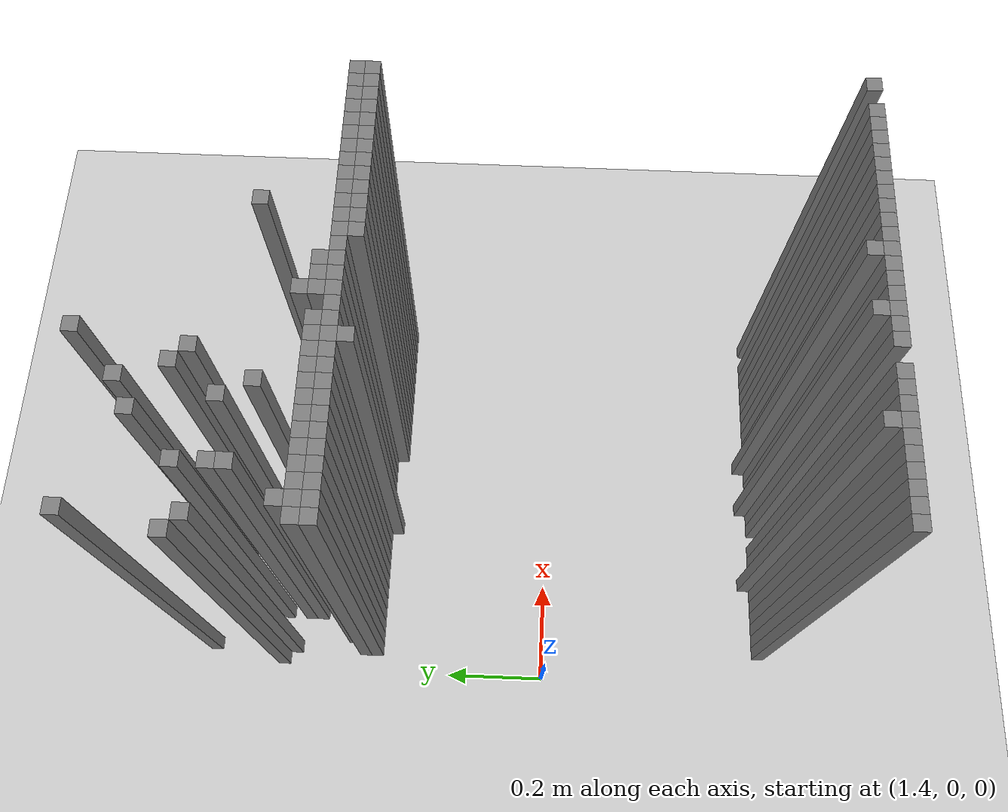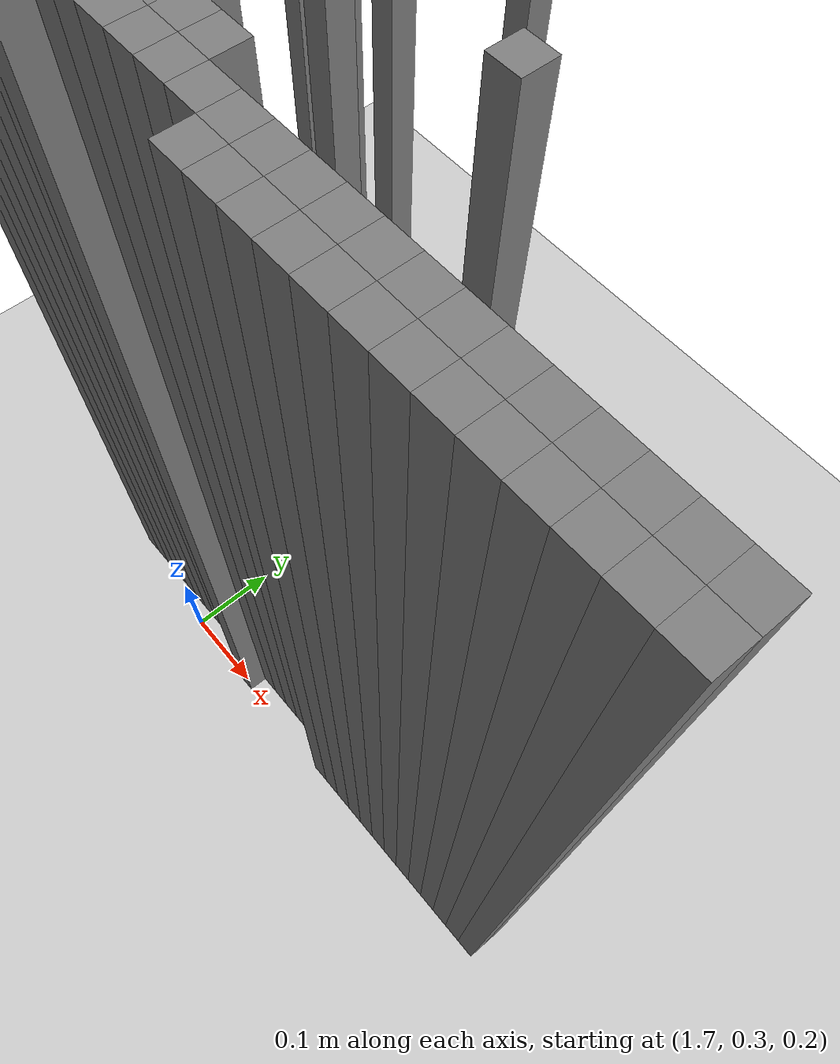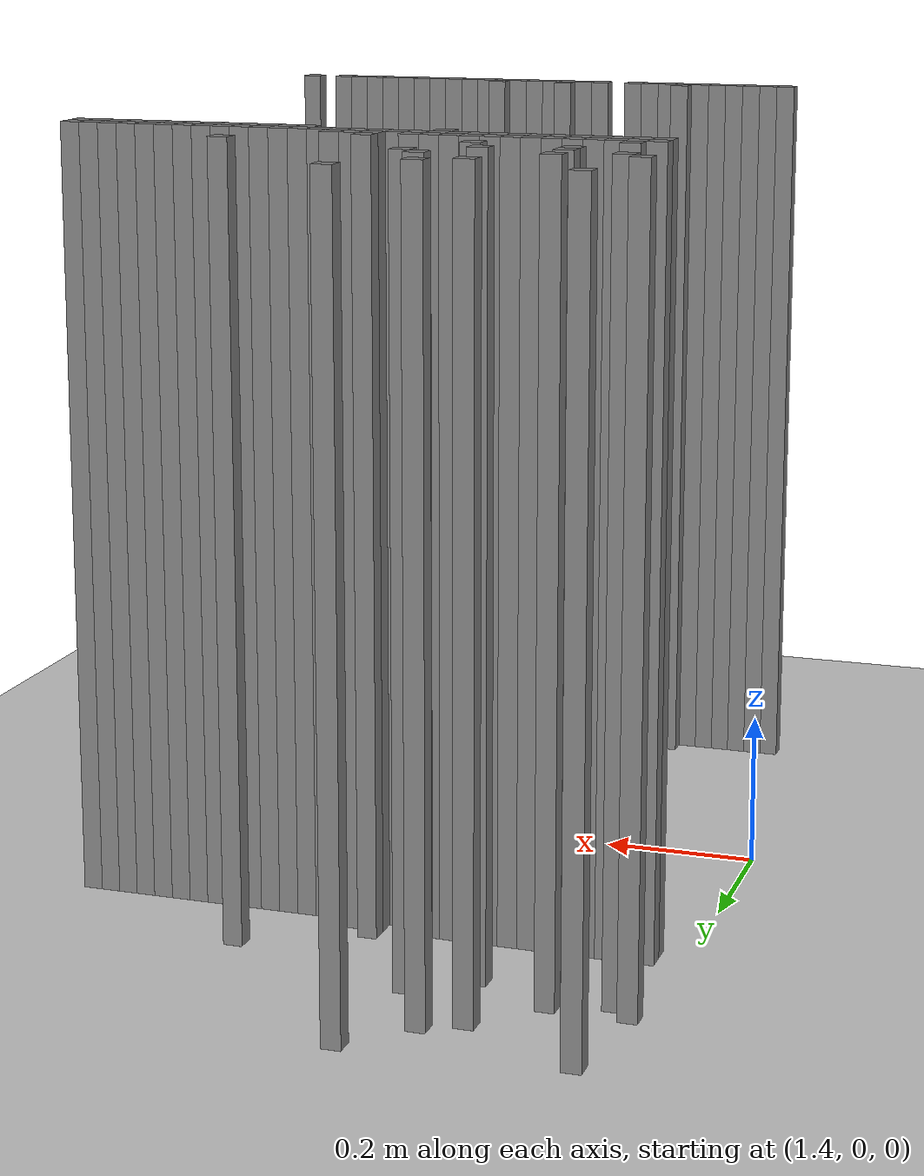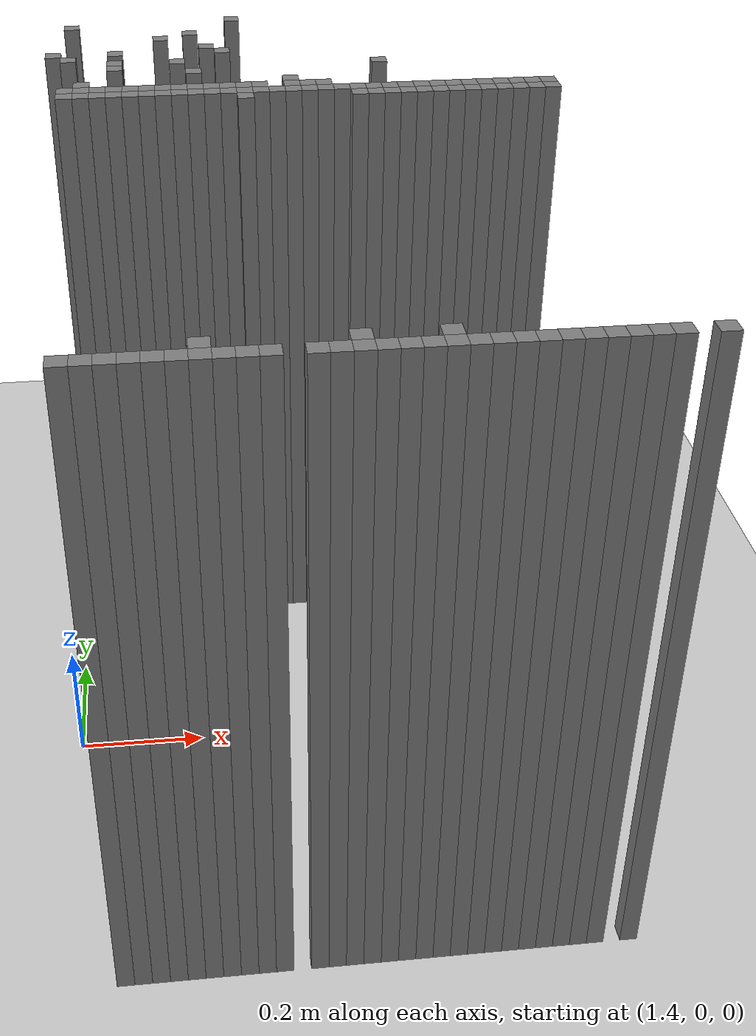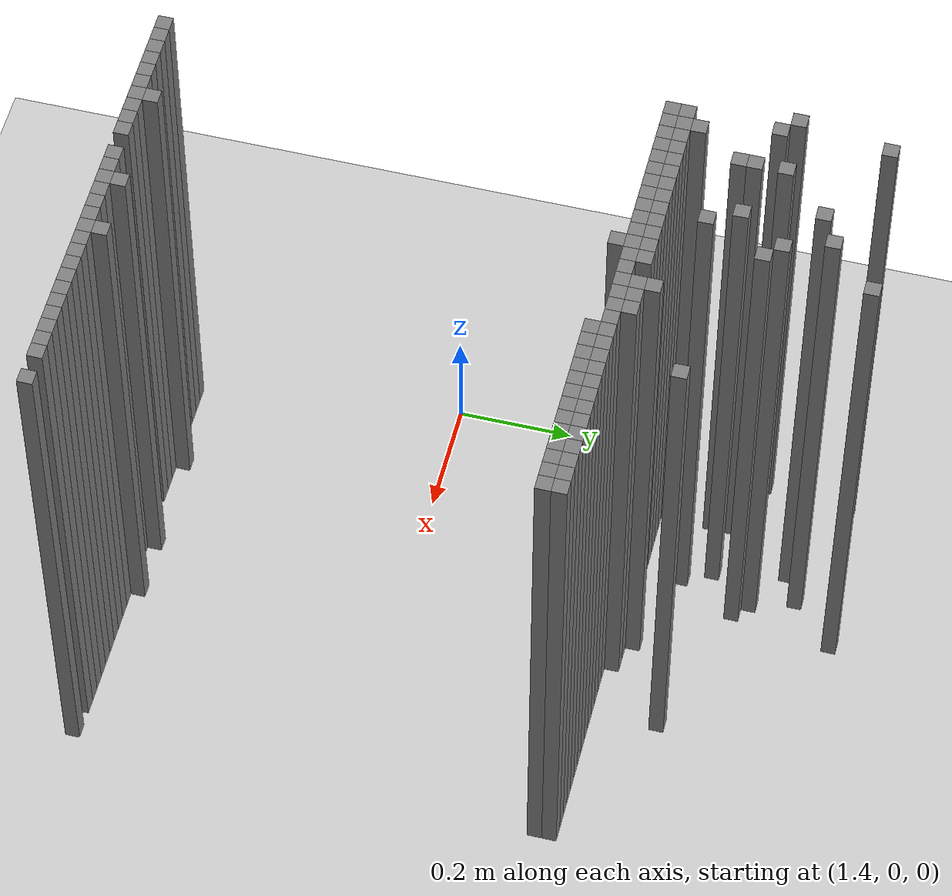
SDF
<sdf version="1.6">
 <world name="map_world">
  <include><uri>model://ground_plane</uri></include>
  <include><uri>model://sun</uri></include>
  <model name="obs_162_20">
   <static>true</static>
   <link name="link">
    <collision name="collision"><geometry><box><size>0.025 0.025 1.0</size></box></geometry></collision>
    <visual name="visual">
     <geometry><box><size>0.025 0.025 1.0</size></box></geometry>
     <material><ambient>0.5 0.5 0.5 1</ambient></material>
    </visual>
   </link>
   <pose>1.7237649999999998 0.7309290000000002 0.5 0 0 0</pose>
  </model>
  <model name="obs_151_21">
   <static>true</static>
   <link name="link">
    <collision name="collision"><geometry><box><size>0.025 0.025 1.0</size></box></geometry></collision>
    <visual name="visual">
     <geometry><box><size>0.025 0.025 1.0</size></box></geometry>
     <material><ambient>0.5 0.5 0.5 1</ambient></material>
    </visual>
   </link>
   <pose>1.4487650000000003 0.7059290000000003 0.5 0 0 0</pose>
  </model>
  <model name="obs_159_23">
   <static>true</static>
   <link name="link">
    <collision name="collision"><geometry><box><size>0.025 0.025 1.0</size></box></geometry></collision>
    <visual name="visual">
     <geometry><box><size>0.025 0.025 1.0</size></box></geometry>
     <material><ambient>0.5 0.5 0.5 1</ambient></material>
    </visual>
   </link>
   <pose>1.648765 0.6559290000000004 0.5 0 0 0</pose>
  </model>
  <model name="obs_157_24">
   <static>true</static>
   <link name="link">
    <collision name="collision"><geometry><box><size>0.025 0.025 1.0</size></box></geometry></collision>
    <visual name="visual">
     <geometry><box><size>0.025 0.025 1.0</size></box></geometry>
     <material><ambient>0.5 0.5 0.5 1</ambient></material>
    </visual>
   </link>
   <pose>1.5987650000000002 0.6309290000000001 0.5 0 0 0</pose>
  </model>
  <model name="obs_160_26">
   <static>true</static>
   <link name="link">
    <collision name="collision"><geometry><box><size>0.025 0.025 1.0</size></box></geometry></collision>
    <visual name="visual">
     <geometry><box><size>0.025 0.025 1.0</size></box></geometry>
     <material><ambient>0.5 0.5 0.5 1</ambient></material>
    </visual>
   </link>
   <pose>1.673765 0.5809290000000003 0.5 0 0 0</pose>
  </model>
  <model name="obs_150_27">
   <static>true</static>
   <link name="link">
    <collision name="collision"><geometry><box><size>0.025 0.025 1.0</size></box></geometry></collision>
    <visual name="visual">
     <geometry><box><size>0.025 0.025 1.0</size></box></geometry>
     <material><ambient>0.5 0.5 0.5 1</ambient></material>
    </visual>
   </link>
   <pose>1.423765 0.5559290000000003 0.5 0 0 0</pose>
  </model>
  <model name="obs_154_27">
   <static>true</static>
   <link name="link">
    <collision name="collision"><geometry><box><size>0.025 0.025 1.0</size></box></geometry></collision>
    <visual name="visual">
     <geometry><box><size>0.025 0.025 1.0</size></box></geometry>
     <material><ambient>0.5 0.5 0.5 1</ambient></material>
    </visual>
   </link>
   <pose>1.523765 0.5559290000000003 0.5 0 0 0</pose>
  </model>
  <model name="obs_161_27">
   <static>true</static>
   <link name="link">
    <collision name="collision"><geometry><box><size>0.025 0.025 1.0</size></box></geometry></collision>
    <visual name="visual">
     <geometry><box><size>0.025 0.025 1.0</size></box></geometry>
     <material><ambient>0.5 0.5 0.5 1</ambient></material>
    </visual>
   </link>
   <pose>1.6987650000000003 0.5559290000000003 0.5 0 0 0</pose>
  </model>
  <model name="obs_151_28">
   <static>true</static>
   <link name="link">
    <collision name="collision"><geometry><box><size>0.025 0.025 1.0</size></box></geometry></collision>
    <visual name="visual">
     <geometry><box><size>0.025 0.025 1.0</size></box></geometry>
     <material><ambient>0.5 0.5 0.5 1</ambient></material>
    </visual>
   </link>
   <pose>1.4487650000000003 0.5309290000000004 0.5 0 0 0</pose>
  </model>
  <model name="obs_154_29">
   <static>true</static>
   <link name="link">
    <collision name="collision"><geometry><box><size>0.025 0.025 1.0</size></box></geometry></collision>
    <visual name="visual">
     <geometry><box><size>0.025 0.025 1.0</size></box></geometry>
     <material><ambient>0.5 0.5 0.5 1</ambient></material>
    </visual>
   </link>
   <pose>1.523765 0.5059290000000001 0.5 0 0 0</pose>
  </model>
  <model name="obs_158_29">
   <static>true</static>
   <link name="link">
    <collision name="collision"><geometry><box><size>0.025 0.025 1.0</size></box></geometry></collision>
    <visual name="visual">
     <geometry><box><size>0.025 0.025 1.0</size></box></geometry>
     <material><ambient>0.5 0.5 0.5 1</ambient></material>
    </visual>
   </link>
   <pose>1.6237650000000001 0.5059290000000001 0.5 0 0 0</pose>
  </model>
  <model name="obs_154_30">
   <static>true</static>
   <link name="link">
    <collision name="collision"><geometry><box><size>0.025 0.025 1.0</size></box></geometry></collision>
    <visual name="visual">
     <geometry><box><size>0.025 0.025 1.0</size></box></geometry>
     <material><ambient>0.5 0.5 0.5 1</ambient></material>
    </visual>
   </link>
   <pose>1.523765 0.48092900000000016 0.5 0 0 0</pose>
  </model>
  <model name="obs_171_30">
   <static>true</static>
   <link name="link">
    <collision name="collision"><geometry><box><size>0.025 0.025 1.0</size></box></geometry></collision>
    <visual name="visual">
     <geometry><box><size>0.025 0.025 1.0</size></box></geometry>
     <material><ambient>0.5 0.5 0.5 1</ambient></material>
    </visual>
   </link>
   <pose>1.9487650000000003 0.48092900000000016 0.5 0 0 0</pose>
  </model>
  <model name="obs_159_31">
   <static>true</static>
   <link name="link">
    <collision name="collision"><geometry><box><size>0.025 0.025 1.0</size></box></geometry></collision>
    <visual name="visual">
     <geometry><box><size>0.025 0.025 1.0</size></box></geometry>
     <material><ambient>0.5 0.5 0.5 1</ambient></material>
    </visual>
   </link>
   <pose>1.648765 0.45592900000000025 0.5 0 0 0</pose>
  </model>
  <model name="obs_152_33">
   <static>true</static>
   <link name="link">
    <collision name="collision"><geometry><box><size>0.025 0.025 1.0</size></box></geometry></collision>
    <visual name="visual">
     <geometry><box><size>0.025 0.025 1.0</size></box></geometry>
     <material><ambient>0.5 0.5 0.5 1</ambient></material>
    </visual>
   </link>
   <pose>1.4737650000000002 0.40592900000000043 0.5 0 0 0</pose>
  </model>
  <model name="obs_165_33">
   <static>true</static>
   <link name="link">
    <collision name="collision"><geometry><box><size>0.025 0.025 1.0</size></box></geometry></collision>
    <visual name="visual">
     <geometry><box><size>0.025 0.025 1.0</size></box></geometry>
     <material><ambient>0.5 0.5 0.5 1</ambient></material>
    </visual>
   </link>
   <pose>1.798765 0.40592900000000043 0.5 0 0 0</pose>
  </model>
  <model name="obs_151_34">
   <static>true</static>
   <link name="link">
    <collision name="collision"><geometry><box><size>0.025 0.025 1.0</size></box></geometry></collision>
    <visual name="visual">
     <geometry><box><size>0.025 0.025 1.0</size></box></geometry>
     <material><ambient>0.5 0.5 0.5 1</ambient></material>
    </visual>
   </link>
   <pose>1.4487650000000003 0.3809290000000001 0.5 0 0 0</pose>
  </model>
  <model name="obs_152_34">
   <static>true</static>
   <link name="link">
    <collision name="collision"><geometry><box><size>0.025 0.025 1.0</size></box></geometry></collision>
    <visual name="visual">
     <geometry><box><size>0.025 0.025 1.0</size></box></geometry>
     <material><ambient>0.5 0.5 0.5 1</ambient></material>
    </visual>
   </link>
   <pose>1.4737650000000002 0.3809290000000001 0.5 0 0 0</pose>
  </model>
  <model name="obs_153_34">
   <static>true</static>
   <link name="link">
    <collision name="collision"><geometry><box><size>0.025 0.025 1.0</size></box></geometry></collision>
    <visual name="visual">
     <geometry><box><size>0.025 0.025 1.0</size></box></geometry>
     <material><ambient>0.5 0.5 0.5 1</ambient></material>
    </visual>
   </link>
   <pose>1.4987650000000001 0.3809290000000001 0.5 0 0 0</pose>
  </model>
  <model name="obs_154_34">
   <static>true</static>
   <link name="link">
    <collision name="collision"><geometry><box><size>0.025 0.025 1.0</size></box></geometry></collision>
    <visual name="visual">
     <geometry><box><size>0.025 0.025 1.0</size></box></geometry>
     <material><ambient>0.5 0.5 0.5 1</ambient></material>
    </visual>
   </link>
   <pose>1.523765 0.3809290000000001 0.5 0 0 0</pose>
  </model>
  <model name="obs_155_34">
   <static>true</static>
   <link name="link">
    <collision name="collision"><geometry><box><size>0.025 0.025 1.0</size></box></geometry></collision>
    <visual name="visual">
     <geometry><box><size>0.025 0.025 1.0</size></box></geometry>
     <material><ambient>0.5 0.5 0.5 1</ambient></material>
    </visual>
   </link>
   <pose>1.548765 0.3809290000000001 0.5 0 0 0</pose>
  </model>
  <model name="obs_156_34">
   <static>true</static>
   <link name="link">
    <collision name="collision"><geometry><box><size>0.025 0.025 1.0</size></box></geometry></collision>
    <visual name="visual">
     <geometry><box><size>0.025 0.025 1.0</size></box></geometry>
     <material><ambient>0.5 0.5 0.5 1</ambient></material>
    </visual>
   </link>
   <pose>1.5737650000000003 0.3809290000000001 0.5 0 0 0</pose>
  </model>
  <model name="obs_157_34">
   <static>true</static>
   <link name="link">
    <collision name="collision"><geometry><box><size>0.025 0.025 1.0</size></box></geometry></collision>
    <visual name="visual">
     <geometry><box><size>0.025 0.025 1.0</size></box></geometry>
     <material><ambient>0.5 0.5 0.5 1</ambient></material>
    </visual>
   </link>
   <pose>1.5987650000000002 0.3809290000000001 0.5 0 0 0</pose>
  </model>
  <model name="obs_158_34">
   <static>true</static>
   <link name="link">
    <collision name="collision"><geometry><box><size>0.025 0.025 1.0</size></box></geometry></collision>
    <visual name="visual">
     <geometry><box><size>0.025 0.025 1.0</size></box></geometry>
     <material><ambient>0.5 0.5 0.5 1</ambient></material>
    </visual>
   </link>
   <pose>1.6237650000000001 0.3809290000000001 0.5 0 0 0</pose>
  </model>
  <model name="obs_159_34">
   <static>true</static>
   <link name="link">
    <collision name="collision"><geometry><box><size>0.025 0.025 1.0</size></box></geometry></collision>
    <visual name="visual">
     <geometry><box><size>0.025 0.025 1.0</size></box></geometry>
     <material><ambient>0.5 0.5 0.5 1</ambient></material>
    </visual>
   </link>
   <pose>1.648765 0.3809290000000001 0.5 0 0 0</pose>
  </model>
  <model name="obs_160_34">
   <static>true</static>
   <link name="link">
    <collision name="collision"><geometry><box><size>0.025 0.025 1.0</size></box></geometry></collision>
    <visual name="visual">
     <geometry><box><size>0.025 0.025 1.0</size></box></geometry>
     <material><ambient>0.5 0.5 0.5 1</ambient></material>
    </visual>
   </link>
   <pose>1.673765 0.3809290000000001 0.5 0 0 0</pose>
  </model>
  <model name="obs_161_34">
   <static>true</static>
   <link name="link">
    <collision name="collision"><geometry><box><size>0.025 0.025 1.0</size></box></geometry></collision>
    <visual name="visual">
     <geometry><box><size>0.025 0.025 1.0</size></box></geometry>
     <material><ambient>0.5 0.5 0.5 1</ambient></material>
    </visual>
   </link>
   <pose>1.6987650000000003 0.3809290000000001 0.5 0 0 0</pose>
  </model>
  <model name="obs_162_34">
   <static>true</static>
   <link name="link">
    <collision name="collision"><geometry><box><size>0.025 0.025 1.0</size></box></geometry></collision>
    <visual name="visual">
     <geometry><box><size>0.025 0.025 1.0</size></box></geometry>
     <material><ambient>0.5 0.5 0.5 1</ambient></material>
    </visual>
   </link>
   <pose>1.7237649999999998 0.3809290000000001 0.5 0 0 0</pose>
  </model>
  <model name="obs_163_34">
   <static>true</static>
   <link name="link">
    <collision name="collision"><geometry><box><size>0.025 0.025 1.0</size></box></geometry></collision>
    <visual name="visual">
     <geometry><box><size>0.025 0.025 1.0</size></box></geometry>
     <material><ambient>0.5 0.5 0.5 1</ambient></material>
    </visual>
   </link>
   <pose>1.7487650000000001 0.3809290000000001 0.5 0 0 0</pose>
  </model>
  <model name="obs_165_34">
   <static>true</static>
   <link name="link">
    <collision name="collision"><geometry><box><size>0.025 0.025 1.0</size></box></geometry></collision>
    <visual name="visual">
     <geometry><box><size>0.025 0.025 1.0</size></box></geometry>
     <material><ambient>0.5 0.5 0.5 1</ambient></material>
    </visual>
   </link>
   <pose>1.798765 0.3809290000000001 0.5 0 0 0</pose>
  </model>
  <model name="obs_166_34">
   <static>true</static>
   <link name="link">
    <collision name="collision"><geometry><box><size>0.025 0.025 1.0</size></box></geometry></collision>
    <visual name="visual">
     <geometry><box><size>0.025 0.025 1.0</size></box></geometry>
     <material><ambient>0.5 0.5 0.5 1</ambient></material>
    </visual>
   </link>
   <pose>1.8237650000000003 0.3809290000000001 0.5 0 0 0</pose>
  </model>
  <model name="obs_167_34">
   <static>true</static>
   <link name="link">
    <collision name="collision"><geometry><box><size>0.025 0.025 1.0</size></box></geometry></collision>
    <visual name="visual">
     <geometry><box><size>0.025 0.025 1.0</size></box></geometry>
     <material><ambient>0.5 0.5 0.5 1</ambient></material>
    </visual>
   </link>
   <pose>1.8487649999999998 0.3809290000000001 0.5 0 0 0</pose>
  </model>
  <model name="obs_151_35">
   <static>true</static>
   <link name="link">
    <collision name="collision"><geometry><box><size>0.025 0.025 1.0</size></box></geometry></collision>
    <visual name="visual">
     <geometry><box><size>0.025 0.025 1.0</size></box></geometry>
     <material><ambient>0.5 0.5 0.5 1</ambient></material>
    </visual>
   </link>
   <pose>1.4487650000000003 0.35592900000000016 0.5 0 0 0</pose>
  </model>
  <model name="obs_152_35">
   <static>true</static>
   <link name="link">
    <collision name="collision"><geometry><box><size>0.025 0.025 1.0</size></box></geometry></collision>
    <visual name="visual">
     <geometry><box><size>0.025 0.025 1.0</size></box></geometry>
     <material><ambient>0.5 0.5 0.5 1</ambient></material>
    </visual>
   </link>
   <pose>1.4737650000000002 0.35592900000000016 0.5 0 0 0</pose>
  </model>
  <model name="obs_153_35">
   <static>true</static>
   <link name="link">
    <collision name="collision"><geometry><box><size>0.025 0.025 1.0</size></box></geometry></collision>
    <visual name="visual">
     <geometry><box><size>0.025 0.025 1.0</size></box></geometry>
     <material><ambient>0.5 0.5 0.5 1</ambient></material>
    </visual>
   </link>
   <pose>1.4987650000000001 0.35592900000000016 0.5 0 0 0</pose>
  </model>
  <model name="obs_154_35">
   <static>true</static>
   <link name="link">
    <collision name="collision"><geometry><box><size>0.025 0.025 1.0</size></box></geometry></collision>
    <visual name="visual">
     <geometry><box><size>0.025 0.025 1.0</size></box></geometry>
     <material><ambient>0.5 0.5 0.5 1</ambient></material>
    </visual>
   </link>
   <pose>1.523765 0.35592900000000016 0.5 0 0 0</pose>
  </model>
  <model name="obs_155_35">
   <static>true</static>
   <link name="link">
    <collision name="collision"><geometry><box><size>0.025 0.025 1.0</size></box></geometry></collision>
    <visual name="visual">
     <geometry><box><size>0.025 0.025 1.0</size></box></geometry>
     <material><ambient>0.5 0.5 0.5 1</ambient></material>
    </visual>
   </link>
   <pose>1.548765 0.35592900000000016 0.5 0 0 0</pose>
  </model>
  <model name="obs_156_35">
   <static>true</static>
   <link name="link">
    <collision name="collision"><geometry><box><size>0.025 0.025 1.0</size></box></geometry></collision>
    <visual name="visual">
     <geometry><box><size>0.025 0.025 1.0</size></box></geometry>
     <material><ambient>0.5 0.5 0.5 1</ambient></material>
    </visual>
   </link>
   <pose>1.5737650000000003 0.35592900000000016 0.5 0 0 0</pose>
  </model>
  <model name="obs_157_35">
   <static>true</static>
   <link name="link">
    <collision name="collision"><geometry><box><size>0.025 0.025 1.0</size></box></geometry></collision>
    <visual name="visual">
     <geometry><box><size>0.025 0.025 1.0</size></box></geometry>
     <material><ambient>0.5 0.5 0.5 1</ambient></material>
    </visual>
   </link>
   <pose>1.5987650000000002 0.35592900000000016 0.5 0 0 0</pose>
  </model>
  <model name="obs_158_35">
   <static>true</static>
   <link name="link">
    <collision name="collision"><geometry><box><size>0.025 0.025 1.0</size></box></geometry></collision>
    <visual name="visual">
     <geometry><box><size>0.025 0.025 1.0</size></box></geometry>
     <material><ambient>0.5 0.5 0.5 1</ambient></material>
    </visual>
   </link>
   <pose>1.6237650000000001 0.35592900000000016 0.5 0 0 0</pose>
  </model>
  <model name="obs_159_35">
   <static>true</static>
   <link name="link">
    <collision name="collision"><geometry><box><size>0.025 0.025 1.0</size></box></geometry></collision>
    <visual name="visual">
     <geometry><box><size>0.025 0.025 1.0</size></box></geometry>
     <material><ambient>0.5 0.5 0.5 1</ambient></material>
    </visual>
   </link>
   <pose>1.648765 0.35592900000000016 0.5 0 0 0</pose>
  </model>
  <model name="obs_160_35">
   <static>true</static>
   <link name="link">
    <collision name="collision"><geometry><box><size>0.025 0.025 1.0</size></box></geometry></collision>
    <visual name="visual">
     <geometry><box><size>0.025 0.025 1.0</size></box></geometry>
     <material><ambient>0.5 0.5 0.5 1</ambient></material>
    </visual>
   </link>
   <pose>1.673765 0.35592900000000016 0.5 0 0 0</pose>
  </model>
  <model name="obs_161_35">
   <static>true</static>
   <link name="link">
    <collision name="collision"><geometry><box><size>0.025 0.025 1.0</size></box></geometry></collision>
    <visual name="visual">
     <geometry><box><size>0.025 0.025 1.0</size></box></geometry>
     <material><ambient>0.5 0.5 0.5 1</ambient></material>
    </visual>
   </link>
   <pose>1.6987650000000003 0.35592900000000016 0.5 0 0 0</pose>
  </model>
  <model name="obs_162_35">
   <static>true</static>
   <link name="link">
    <collision name="collision"><geometry><box><size>0.025 0.025 1.0</size></box></geometry></collision>
    <visual name="visual">
     <geometry><box><size>0.025 0.025 1.0</size></box></geometry>
     <material><ambient>0.5 0.5 0.5 1</ambient></material>
    </visual>
   </link>
   <pose>1.7237649999999998 0.35592900000000016 0.5 0 0 0</pose>
  </model>
  <model name="obs_163_35">
   <static>true</static>
   <link name="link">
    <collision name="collision"><geometry><box><size>0.025 0.025 1.0</size></box></geometry></collision>
    <visual name="visual">
     <geometry><box><size>0.025 0.025 1.0</size></box></geometry>
     <material><ambient>0.5 0.5 0.5 1</ambient></material>
    </visual>
   </link>
   <pose>1.7487650000000001 0.35592900000000016 0.5 0 0 0</pose>
  </model>
  <model name="obs_164_35">
   <static>true</static>
   <link name="link">
    <collision name="collision"><geometry><box><size>0.025 0.025 1.0</size></box></geometry></collision>
    <visual name="visual">
     <geometry><box><size>0.025 0.025 1.0</size></box></geometry>
     <material><ambient>0.5 0.5 0.5 1</ambient></material>
    </visual>
   </link>
   <pose>1.7737650000000005 0.35592900000000016 0.5 0 0 0</pose>
  </model>
  <model name="obs_165_35">
   <static>true</static>
   <link name="link">
    <collision name="collision"><geometry><box><size>0.025 0.025 1.0</size></box></geometry></collision>
    <visual name="visual">
     <geometry><box><size>0.025 0.025 1.0</size></box></geometry>
     <material><ambient>0.5 0.5 0.5 1</ambient></material>
    </visual>
   </link>
   <pose>1.798765 0.35592900000000016 0.5 0 0 0</pose>
  </model>
  <model name="obs_166_35">
   <static>true</static>
   <link name="link">
    <collision name="collision"><geometry><box><size>0.025 0.025 1.0</size></box></geometry></collision>
    <visual name="visual">
     <geometry><box><size>0.025 0.025 1.0</size></box></geometry>
     <material><ambient>0.5 0.5 0.5 1</ambient></material>
    </visual>
   </link>
   <pose>1.8237650000000003 0.35592900000000016 0.5 0 0 0</pose>
  </model>
  <model name="obs_167_35">
   <static>true</static>
   <link name="link">
    <collision name="collision"><geometry><box><size>0.025 0.025 1.0</size></box></geometry></collision>
    <visual name="visual">
     <geometry><box><size>0.025 0.025 1.0</size></box></geometry>
     <material><ambient>0.5 0.5 0.5 1</ambient></material>
    </visual>
   </link>
   <pose>1.8487649999999998 0.35592900000000016 0.5 0 0 0</pose>
  </model>
  <model name="obs_168_35">
   <static>true</static>
   <link name="link">
    <collision name="collision"><geometry><box><size>0.025 0.025 1.0</size></box></geometry></collision>
    <visual name="visual">
     <geometry><box><size>0.025 0.025 1.0</size></box></geometry>
     <material><ambient>0.5 0.5 0.5 1</ambient></material>
    </visual>
   </link>
   <pose>1.8737650000000001 0.35592900000000016 0.5 0 0 0</pose>
  </model>
  <model name="obs_169_35">
   <static>true</static>
   <link name="link">
    <collision name="collision"><geometry><box><size>0.025 0.025 1.0</size></box></geometry></collision>
    <visual name="visual">
     <geometry><box><size>0.025 0.025 1.0</size></box></geometry>
     <material><ambient>0.5 0.5 0.5 1</ambient></material>
    </visual>
   </link>
   <pose>1.8987650000000005 0.35592900000000016 0.5 0 0 0</pose>
  </model>
  <model name="obs_170_35">
   <static>true</static>
   <link name="link">
    <collision name="collision"><geometry><box><size>0.025 0.025 1.0</size></box></geometry></collision>
    <visual name="visual">
     <geometry><box><size>0.025 0.025 1.0</size></box></geometry>
     <material><ambient>0.5 0.5 0.5 1</ambient></material>
    </visual>
   </link>
   <pose>1.923765 0.35592900000000016 0.5 0 0 0</pose>
  </model>
  <model name="obs_171_35">
   <static>true</static>
   <link name="link">
    <collision name="collision"><geometry><box><size>0.025 0.025 1.0</size></box></geometry></collision>
    <visual name="visual">
     <geometry><box><size>0.025 0.025 1.0</size></box></geometry>
     <material><ambient>0.5 0.5 0.5 1</ambient></material>
    </visual>
   </link>
   <pose>1.9487650000000003 0.35592900000000016 0.5 0 0 0</pose>
  </model>
  <model name="obs_172_35">
   <static>true</static>
   <link name="link">
    <collision name="collision"><geometry><box><size>0.025 0.025 1.0</size></box></geometry></collision>
    <visual name="visual">
     <geometry><box><size>0.025 0.025 1.0</size></box></geometry>
     <material><ambient>0.5 0.5 0.5 1</ambient></material>
    </visual>
   </link>
   <pose>1.9737649999999998 0.35592900000000016 0.5 0 0 0</pose>
  </model>
  <model name="obs_173_35">
   <static>true</static>
   <link name="link">
    <collision name="collision"><geometry><box><size>0.025 0.025 1.0</size></box></geometry></collision>
    <visual name="visual">
     <geometry><box><size>0.025 0.025 1.0</size></box></geometry>
     <material><ambient>0.5 0.5 0.5 1</ambient></material>
    </visual>
   </link>
   <pose>1.9987650000000001 0.35592900000000016 0.5 0 0 0</pose>
  </model>
  <model name="obs_174_35">
   <static>true</static>
   <link name="link">
    <collision name="collision"><geometry><box><size>0.025 0.025 1.0</size></box></geometry></collision>
    <visual name="visual">
     <geometry><box><size>0.025 0.025 1.0</size></box></geometry>
     <material><ambient>0.5 0.5 0.5 1</ambient></material>
    </visual>
   </link>
   <pose>2.0237650000000005 0.35592900000000016 0.5 0 0 0</pose>
  </model>
  <model name="obs_175_35">
   <static>true</static>
   <link name="link">
    <collision name="collision"><geometry><box><size>0.025 0.025 1.0</size></box></geometry></collision>
    <visual name="visual">
     <geometry><box><size>0.025 0.025 1.0</size></box></geometry>
     <material><ambient>0.5 0.5 0.5 1</ambient></material>
    </visual>
   </link>
   <pose>2.048765 0.35592900000000016 0.5 0 0 0</pose>
  </model>
  <model name="obs_176_35">
   <static>true</static>
   <link name="link">
    <collision name="collision"><geometry><box><size>0.025 0.025 1.0</size></box></geometry></collision>
    <visual name="visual">
     <geometry><box><size>0.025 0.025 1.0</size></box></geometry>
     <material><ambient>0.5 0.5 0.5 1</ambient></material>
    </visual>
   </link>
   <pose>2.0737650000000003 0.35592900000000016 0.5 0 0 0</pose>
  </model>
  <model name="obs_177_35">
   <static>true</static>
   <link name="link">
    <collision name="collision"><geometry><box><size>0.025 0.025 1.0</size></box></geometry></collision>
    <visual name="visual">
     <geometry><box><size>0.025 0.025 1.0</size></box></geometry>
     <material><ambient>0.5 0.5 0.5 1</ambient></material>
    </visual>
   </link>
   <pose>2.0987649999999998 0.35592900000000016 0.5 0 0 0</pose>
  </model>
  <model name="obs_178_35">
   <static>true</static>
   <link name="link">
    <collision name="collision"><geometry><box><size>0.025 0.025 1.0</size></box></geometry></collision>
    <visual name="visual">
     <geometry><box><size>0.025 0.025 1.0</size></box></geometry>
     <material><ambient>0.5 0.5 0.5 1</ambient></material>
    </visual>
   </link>
   <pose>2.123765 0.35592900000000016 0.5 0 0 0</pose>
  </model>
  <model name="obs_179_35">
   <static>true</static>
   <link name="link">
    <collision name="collision"><geometry><box><size>0.025 0.025 1.0</size></box></geometry></collision>
    <visual name="visual">
     <geometry><box><size>0.025 0.025 1.0</size></box></geometry>
     <material><ambient>0.5 0.5 0.5 1</ambient></material>
    </visual>
   </link>
   <pose>2.1487650000000005 0.35592900000000016 0.5 0 0 0</pose>
  </model>
  <model name="obs_180_35">
   <static>true</static>
   <link name="link">
    <collision name="collision"><geometry><box><size>0.025 0.025 1.0</size></box></geometry></collision>
    <visual name="visual">
     <geometry><box><size>0.025 0.025 1.0</size></box></geometry>
     <material><ambient>0.5 0.5 0.5 1</ambient></material>
    </visual>
   </link>
   <pose>2.173765 0.35592900000000016 0.5 0 0 0</pose>
  </model>
  <model name="obs_181_35">
   <static>true</static>
   <link name="link">
    <collision name="collision"><geometry><box><size>0.025 0.025 1.0</size></box></geometry></collision>
    <visual name="visual">
     <geometry><box><size>0.025 0.025 1.0</size></box></geometry>
     <material><ambient>0.5 0.5 0.5 1</ambient></material>
    </visual>
   </link>
   <pose>2.1987650000000003 0.35592900000000016 0.5 0 0 0</pose>
  </model>
  <model name="obs_162_36">
   <static>true</static>
   <link name="link">
    <collision name="collision"><geometry><box><size>0.025 0.025 1.0</size></box></geometry></collision>
    <visual name="visual">
     <geometry><box><size>0.025 0.025 1.0</size></box></geometry>
     <material><ambient>0.5 0.5 0.5 1</ambient></material>
    </visual>
   </link>
   <pose>1.7237649999999998 0.33092900000000025 0.5 0 0 0</pose>
  </model>
  <model name="obs_169_36">
   <static>true</static>
   <link name="link">
    <collision name="collision"><geometry><box><size>0.025 0.025 1.0</size></box></geometry></collision>
    <visual name="visual">
     <geometry><box><size>0.025 0.025 1.0</size></box></geometry>
     <material><ambient>0.5 0.5 0.5 1</ambient></material>
    </visual>
   </link>
   <pose>1.8987650000000005 0.33092900000000025 0.5 0 0 0</pose>
  </model>
  <model name="obs_170_36">
   <static>true</static>
   <link name="link">
    <collision name="collision"><geometry><box><size>0.025 0.025 1.0</size></box></geometry></collision>
    <visual name="visual">
     <geometry><box><size>0.025 0.025 1.0</size></box></geometry>
     <material><ambient>0.5 0.5 0.5 1</ambient></material>
    </visual>
   </link>
   <pose>1.923765 0.33092900000000025 0.5 0 0 0</pose>
  </model>
  <model name="obs_171_36">
   <static>true</static>
   <link name="link">
    <collision name="collision"><geometry><box><size>0.025 0.025 1.0</size></box></geometry></collision>
    <visual name="visual">
     <geometry><box><size>0.025 0.025 1.0</size></box></geometry>
     <material><ambient>0.5 0.5 0.5 1</ambient></material>
    </visual>
   </link>
   <pose>1.9487650000000003 0.33092900000000025 0.5 0 0 0</pose>
  </model>
  <model name="obs_172_36">
   <static>true</static>
   <link name="link">
    <collision name="collision"><geometry><box><size>0.025 0.025 1.0</size></box></geometry></collision>
    <visual name="visual">
     <geometry><box><size>0.025 0.025 1.0</size></box></geometry>
     <material><ambient>0.5 0.5 0.5 1</ambient></material>
    </visual>
   </link>
   <pose>1.9737649999999998 0.33092900000000025 0.5 0 0 0</pose>
  </model>
  <model name="obs_173_36">
   <static>true</static>
   <link name="link">
    <collision name="collision"><geometry><box><size>0.025 0.025 1.0</size></box></geometry></collision>
    <visual name="visual">
     <geometry><box><size>0.025 0.025 1.0</size></box></geometry>
     <material><ambient>0.5 0.5 0.5 1</ambient></material>
    </visual>
   </link>
   <pose>1.9987650000000001 0.33092900000000025 0.5 0 0 0</pose>
  </model>
  <model name="obs_174_36">
   <static>true</static>
   <link name="link">
    <collision name="collision"><geometry><box><size>0.025 0.025 1.0</size></box></geometry></collision>
    <visual name="visual">
     <geometry><box><size>0.025 0.025 1.0</size></box></geometry>
     <material><ambient>0.5 0.5 0.5 1</ambient></material>
    </visual>
   </link>
   <pose>2.0237650000000005 0.33092900000000025 0.5 0 0 0</pose>
  </model>
  <model name="obs_175_36">
   <static>true</static>
   <link name="link">
    <collision name="collision"><geometry><box><size>0.025 0.025 1.0</size></box></geometry></collision>
    <visual name="visual">
     <geometry><box><size>0.025 0.025 1.0</size></box></geometry>
     <material><ambient>0.5 0.5 0.5 1</ambient></material>
    </visual>
   </link>
   <pose>2.048765 0.33092900000000025 0.5 0 0 0</pose>
  </model>
  <model name="obs_176_36">
   <static>true</static>
   <link name="link">
    <collision name="collision"><geometry><box><size>0.025 0.025 1.0</size></box></geometry></collision>
    <visual name="visual">
     <geometry><box><size>0.025 0.025 1.0</size></box></geometry>
     <material><ambient>0.5 0.5 0.5 1</ambient></material>
    </visual>
   </link>
   <pose>2.0737650000000003 0.33092900000000025 0.5 0 0 0</pose>
  </model>
  <model name="obs_177_36">
   <static>true</static>
   <link name="link">
    <collision name="collision"><geometry><box><size>0.025 0.025 1.0</size></box></geometry></collision>
    <visual name="visual">
     <geometry><box><size>0.025 0.025 1.0</size></box></geometry>
     <material><ambient>0.5 0.5 0.5 1</ambient></material>
    </visual>
   </link>
   <pose>2.0987649999999998 0.33092900000000025 0.5 0 0 0</pose>
  </model>
  <model name="obs_178_36">
   <static>true</static>
   <link name="link">
    <collision name="collision"><geometry><box><size>0.025 0.025 1.0</size></box></geometry></collision>
    <visual name="visual">
     <geometry><box><size>0.025 0.025 1.0</size></box></geometry>
     <material><ambient>0.5 0.5 0.5 1</ambient></material>
    </visual>
   </link>
   <pose>2.123765 0.33092900000000025 0.5 0 0 0</pose>
  </model>
  <model name="obs_179_36">
   <static>true</static>
   <link name="link">
    <collision name="collision"><geometry><box><size>0.025 0.025 1.0</size></box></geometry></collision>
    <visual name="visual">
     <geometry><box><size>0.025 0.025 1.0</size></box></geometry>
     <material><ambient>0.5 0.5 0.5 1</ambient></material>
    </visual>
   </link>
   <pose>2.1487650000000005 0.33092900000000025 0.5 0 0 0</pose>
  </model>
  <model name="obs_180_36">
   <static>true</static>
   <link name="link">
    <collision name="collision"><geometry><box><size>0.025 0.025 1.0</size></box></geometry></collision>
    <visual name="visual">
     <geometry><box><size>0.025 0.025 1.0</size></box></geometry>
     <material><ambient>0.5 0.5 0.5 1</ambient></material>
    </visual>
   </link>
   <pose>2.173765 0.33092900000000025 0.5 0 0 0</pose>
  </model>
  <model name="obs_181_36">
   <static>true</static>
   <link name="link">
    <collision name="collision"><geometry><box><size>0.025 0.025 1.0</size></box></geometry></collision>
    <visual name="visual">
     <geometry><box><size>0.025 0.025 1.0</size></box></geometry>
     <material><ambient>0.5 0.5 0.5 1</ambient></material>
    </visual>
   </link>
   <pose>2.1987650000000003 0.33092900000000025 0.5 0 0 0</pose>
  </model>
  <model name="obs_158_67">
   <static>true</static>
   <link name="link">
    <collision name="collision"><geometry><box><size>0.025 0.025 1.0</size></box></geometry></collision>
    <visual name="visual">
     <geometry><box><size>0.025 0.025 1.0</size></box></geometry>
     <material><ambient>0.5 0.5 0.5 1</ambient></material>
    </visual>
   </link>
   <pose>1.6237650000000001 -0.4440709999999999 0.5 0 0 0</pose>
  </model>
  <model name="obs_165_67">
   <static>true</static>
   <link name="link">
    <collision name="collision"><geometry><box><size>0.025 0.025 1.0</size></box></geometry></collision>
    <visual name="visual">
     <geometry><box><size>0.025 0.025 1.0</size></box></geometry>
     <material><ambient>0.5 0.5 0.5 1</ambient></material>
    </visual>
   </link>
   <pose>1.798765 -0.4440709999999999 0.5 0 0 0</pose>
  </model>
  <model name="obs_169_67">
   <static>true</static>
   <link name="link">
    <collision name="collision"><geometry><box><size>0.025 0.025 1.0</size></box></geometry></collision>
    <visual name="visual">
     <geometry><box><size>0.025 0.025 1.0</size></box></geometry>
     <material><ambient>0.5 0.5 0.5 1</ambient></material>
    </visual>
   </link>
   <pose>1.8987650000000005 -0.4440709999999999 0.5 0 0 0</pose>
  </model>
  <model name="obs_152_68">
   <static>true</static>
   <link name="link">
    <collision name="collision"><geometry><box><size>0.025 0.025 1.0</size></box></geometry></collision>
    <visual name="visual">
     <geometry><box><size>0.025 0.025 1.0</size></box></geometry>
     <material><ambient>0.5 0.5 0.5 1</ambient></material>
    </visual>
   </link>
   <pose>1.4737650000000002 -0.4690709999999998 0.5 0 0 0</pose>
  </model>
  <model name="obs_153_68">
   <static>true</static>
   <link name="link">
    <collision name="collision"><geometry><box><size>0.025 0.025 1.0</size></box></geometry></collision>
    <visual name="visual">
     <geometry><box><size>0.025 0.025 1.0</size></box></geometry>
     <material><ambient>0.5 0.5 0.5 1</ambient></material>
    </visual>
   </link>
   <pose>1.4987650000000001 -0.4690709999999998 0.5 0 0 0</pose>
  </model>
  <model name="obs_154_68">
   <static>true</static>
   <link name="link">
    <collision name="collision"><geometry><box><size>0.025 0.025 1.0</size></box></geometry></collision>
    <visual name="visual">
     <geometry><box><size>0.025 0.025 1.0</size></box></geometry>
     <material><ambient>0.5 0.5 0.5 1</ambient></material>
    </visual>
   </link>
   <pose>1.523765 -0.4690709999999998 0.5 0 0 0</pose>
  </model>
  <model name="obs_155_68">
   <static>true</static>
   <link name="link">
    <collision name="collision"><geometry><box><size>0.025 0.025 1.0</size></box></geometry></collision>
    <visual name="visual">
     <geometry><box><size>0.025 0.025 1.0</size></box></geometry>
     <material><ambient>0.5 0.5 0.5 1</ambient></material>
    </visual>
   </link>
   <pose>1.548765 -0.4690709999999998 0.5 0 0 0</pose>
  </model>
  <model name="obs_156_68">
   <static>true</static>
   <link name="link">
    <collision name="collision"><geometry><box><size>0.025 0.025 1.0</size></box></geometry></collision>
    <visual name="visual">
     <geometry><box><size>0.025 0.025 1.0</size></box></geometry>
     <material><ambient>0.5 0.5 0.5 1</ambient></material>
    </visual>
   </link>
   <pose>1.5737650000000003 -0.4690709999999998 0.5 0 0 0</pose>
  </model>
  <model name="obs_157_68">
   <static>true</static>
   <link name="link">
    <collision name="collision"><geometry><box><size>0.025 0.025 1.0</size></box></geometry></collision>
    <visual name="visual">
     <geometry><box><size>0.025 0.025 1.0</size></box></geometry>
     <material><ambient>0.5 0.5 0.5 1</ambient></material>
    </visual>
   </link>
   <pose>1.5987650000000002 -0.4690709999999998 0.5 0 0 0</pose>
  </model>
  <model name="obs_158_68">
   <static>true</static>
   <link name="link">
    <collision name="collision"><geometry><box><size>0.025 0.025 1.0</size></box></geometry></collision>
    <visual name="visual">
     <geometry><box><size>0.025 0.025 1.0</size></box></geometry>
     <material><ambient>0.5 0.5 0.5 1</ambient></material>
    </visual>
   </link>
   <pose>1.6237650000000001 -0.4690709999999998 0.5 0 0 0</pose>
  </model>
  <model name="obs_159_68">
   <static>true</static>
   <link name="link">
    <collision name="collision"><geometry><box><size>0.025 0.025 1.0</size></box></geometry></collision>
    <visual name="visual">
     <geometry><box><size>0.025 0.025 1.0</size></box></geometry>
     <material><ambient>0.5 0.5 0.5 1</ambient></material>
    </visual>
   </link>
   <pose>1.648765 -0.4690709999999998 0.5 0 0 0</pose>
  </model>
  <model name="obs_160_68">
   <static>true</static>
   <link name="link">
    <collision name="collision"><geometry><box><size>0.025 0.025 1.0</size></box></geometry></collision>
    <visual name="visual">
     <geometry><box><size>0.025 0.025 1.0</size></box></geometry>
     <material><ambient>0.5 0.5 0.5 1</ambient></material>
    </visual>
   </link>
   <pose>1.673765 -0.4690709999999998 0.5 0 0 0</pose>
  </model>
  <model name="obs_161_68">
   <static>true</static>
   <link name="link">
    <collision name="collision"><geometry><box><size>0.025 0.025 1.0</size></box></geometry></collision>
    <visual name="visual">
     <geometry><box><size>0.025 0.025 1.0</size></box></geometry>
     <material><ambient>0.5 0.5 0.5 1</ambient></material>
    </visual>
   </link>
   <pose>1.6987650000000003 -0.4690709999999998 0.5 0 0 0</pose>
  </model>
  <model name="obs_163_68">
   <static>true</static>
   <link name="link">
    <collision name="collision"><geometry><box><size>0.025 0.025 1.0</size></box></geometry></collision>
    <visual name="visual">
     <geometry><box><size>0.025 0.025 1.0</size></box></geometry>
     <material><ambient>0.5 0.5 0.5 1</ambient></material>
    </visual>
   </link>
   <pose>1.7487650000000001 -0.4690709999999998 0.5 0 0 0</pose>
  </model>
  <model name="obs_164_68">
   <static>true</static>
   <link name="link">
    <collision name="collision"><geometry><box><size>0.025 0.025 1.0</size></box></geometry></collision>
    <visual name="visual">
     <geometry><box><size>0.025 0.025 1.0</size></box></geometry>
     <material><ambient>0.5 0.5 0.5 1</ambient></material>
    </visual>
   </link>
   <pose>1.7737650000000005 -0.4690709999999998 0.5 0 0 0</pose>
  </model>
  <model name="obs_165_68">
   <static>true</static>
   <link name="link">
    <collision name="collision"><geometry><box><size>0.025 0.025 1.0</size></box></geometry></collision>
    <visual name="visual">
     <geometry><box><size>0.025 0.025 1.0</size></box></geometry>
     <material><ambient>0.5 0.5 0.5 1</ambient></material>
    </visual>
   </link>
   <pose>1.798765 -0.4690709999999998 0.5 0 0 0</pose>
  </model>
  <model name="obs_166_68">
   <static>true</static>
   <link name="link">
    <collision name="collision"><geometry><box><size>0.025 0.025 1.0</size></box></geometry></collision>
    <visual name="visual">
     <geometry><box><size>0.025 0.025 1.0</size></box></geometry>
     <material><ambient>0.5 0.5 0.5 1</ambient></material>
    </visual>
   </link>
   <pose>1.8237650000000003 -0.4690709999999998 0.5 0 0 0</pose>
  </model>
  <model name="obs_167_68">
   <static>true</static>
   <link name="link">
    <collision name="collision"><geometry><box><size>0.025 0.025 1.0</size></box></geometry></collision>
    <visual name="visual">
     <geometry><box><size>0.025 0.025 1.0</size></box></geometry>
     <material><ambient>0.5 0.5 0.5 1</ambient></material>
    </visual>
   </link>
   <pose>1.8487649999999998 -0.4690709999999998 0.5 0 0 0</pose>
  </model>
  <model name="obs_168_68">
   <static>true</static>
   <link name="link">
    <collision name="collision"><geometry><box><size>0.025 0.025 1.0</size></box></geometry></collision>
    <visual name="visual">
     <geometry><box><size>0.025 0.025 1.0</size></box></geometry>
     <material><ambient>0.5 0.5 0.5 1</ambient></material>
    </visual>
   </link>
   <pose>1.8737650000000001 -0.4690709999999998 0.5 0 0 0</pose>
  </model>
  <model name="obs_169_68">
   <static>true</static>
   <link name="link">
    <collision name="collision"><geometry><box><size>0.025 0.025 1.0</size></box></geometry></collision>
    <visual name="visual">
     <geometry><box><size>0.025 0.025 1.0</size></box></geometry>
     <material><ambient>0.5 0.5 0.5 1</ambient></material>
    </visual>
   </link>
   <pose>1.8987650000000005 -0.4690709999999998 0.5 0 0 0</pose>
  </model>
  <model name="obs_170_68">
   <static>true</static>
   <link name="link">
    <collision name="collision"><geometry><box><size>0.025 0.025 1.0</size></box></geometry></collision>
    <visual name="visual">
     <geometry><box><size>0.025 0.025 1.0</size></box></geometry>
     <material><ambient>0.5 0.5 0.5 1</ambient></material>
    </visual>
   </link>
   <pose>1.923765 -0.4690709999999998 0.5 0 0 0</pose>
  </model>
  <model name="obs_171_68">
   <static>true</static>
   <link name="link">
    <collision name="collision"><geometry><box><size>0.025 0.025 1.0</size></box></geometry></collision>
    <visual name="visual">
     <geometry><box><size>0.025 0.025 1.0</size></box></geometry>
     <material><ambient>0.5 0.5 0.5 1</ambient></material>
    </visual>
   </link>
   <pose>1.9487650000000003 -0.4690709999999998 0.5 0 0 0</pose>
  </model>
  <model name="obs_172_68">
   <static>true</static>
   <link name="link">
    <collision name="collision"><geometry><box><size>0.025 0.025 1.0</size></box></geometry></collision>
    <visual name="visual">
     <geometry><box><size>0.025 0.025 1.0</size></box></geometry>
     <material><ambient>0.5 0.5 0.5 1</ambient></material>
    </visual>
   </link>
   <pose>1.9737649999999998 -0.4690709999999998 0.5 0 0 0</pose>
  </model>
  <model name="obs_173_68">
   <static>true</static>
   <link name="link">
    <collision name="collision"><geometry><box><size>0.025 0.025 1.0</size></box></geometry></collision>
    <visual name="visual">
     <geometry><box><size>0.025 0.025 1.0</size></box></geometry>
     <material><ambient>0.5 0.5 0.5 1</ambient></material>
    </visual>
   </link>
   <pose>1.9987650000000001 -0.4690709999999998 0.5 0 0 0</pose>
  </model>
  <model name="obs_174_68">
   <static>true</static>
   <link name="link">
    <collision name="collision"><geometry><box><size>0.025 0.025 1.0</size></box></geometry></collision>
    <visual name="visual">
     <geometry><box><size>0.025 0.025 1.0</size></box></geometry>
     <material><ambient>0.5 0.5 0.5 1</ambient></material>
    </visual>
   </link>
   <pose>2.0237650000000005 -0.4690709999999998 0.5 0 0 0</pose>
  </model>
  <model name="obs_175_68">
   <static>true</static>
   <link name="link">
    <collision name="collision"><geometry><box><size>0.025 0.025 1.0</size></box></geometry></collision>
    <visual name="visual">
     <geometry><box><size>0.025 0.025 1.0</size></box></geometry>
     <material><ambient>0.5 0.5 0.5 1</ambient></material>
    </visual>
   </link>
   <pose>2.048765 -0.4690709999999998 0.5 0 0 0</pose>
  </model>
  <model name="obs_176_68">
   <static>true</static>
   <link name="link">
    <collision name="collision"><geometry><box><size>0.025 0.025 1.0</size></box></geometry></collision>
    <visual name="visual">
     <geometry><box><size>0.025 0.025 1.0</size></box></geometry>
     <material><ambient>0.5 0.5 0.5 1</ambient></material>
    </visual>
   </link>
   <pose>2.0737650000000003 -0.4690709999999998 0.5 0 0 0</pose>
  </model>
  <model name="obs_177_68">
   <static>true</static>
   <link name="link">
    <collision name="collision"><geometry><box><size>0.025 0.025 1.0</size></box></geometry></collision>
    <visual name="visual">
     <geometry><box><size>0.025 0.025 1.0</size></box></geometry>
     <material><ambient>0.5 0.5 0.5 1</ambient></material>
    </visual>
   </link>
   <pose>2.0987649999999998 -0.4690709999999998 0.5 0 0 0</pose>
  </model>
  <model name="obs_178_68">
   <static>true</static>
   <link name="link">
    <collision name="collision"><geometry><box><size>0.025 0.025 1.0</size></box></geometry></collision>
    <visual name="visual">
     <geometry><box><size>0.025 0.025 1.0</size></box></geometry>
     <material><ambient>0.5 0.5 0.5 1</ambient></material>
    </visual>
   </link>
   <pose>2.123765 -0.4690709999999998 0.5 0 0 0</pose>
  </model>
  <model name="obs_179_68">
   <static>true</static>
   <link name="link">
    <collision name="collision"><geometry><box><size>0.025 0.025 1.0</size></box></geometry></collision>
    <visual name="visual">
     <geometry><box><size>0.025 0.025 1.0</size></box></geometry>
     <material><ambient>0.5 0.5 0.5 1</ambient></material>
    </visual>
   </link>
   <pose>2.1487650000000005 -0.4690709999999998 0.5 0 0 0</pose>
  </model>
  <model name="obs_181_68">
   <static>true</static>
   <link name="link">
    <collision name="collision"><geometry><box><size>0.025 0.025 1.0</size></box></geometry></collision>
    <visual name="visual">
     <geometry><box><size>0.025 0.025 1.0</size></box></geometry>
     <material><ambient>0.5 0.5 0.5 1</ambient></material>
    </visual>
   </link>
   <pose>2.1987650000000003 -0.4690709999999998 0.5 0 0 0</pose>
  </model>
 </world>
</sdf>
